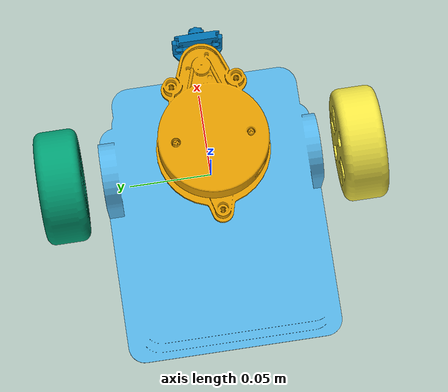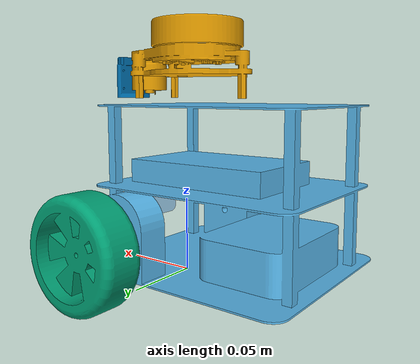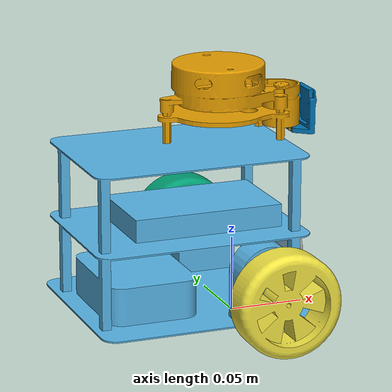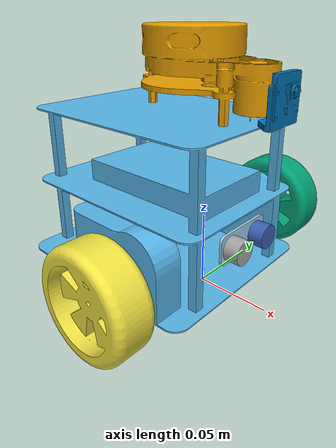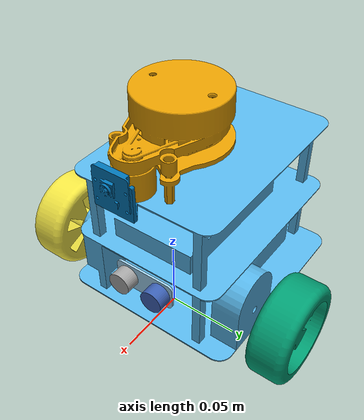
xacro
<?xml version="1.0"?>
<robot xmlns:xacro="http://ros.org/wiki/xacro" name="aidl200">
    <xacro:include filename="$(find minibot_description)/urdf/common/inertia_macro.urdf.xacro"/>
    <xacro:include filename="$(find minibot_description)/urdf/minibot.urdf.xacro"/>
    <xacro:include filename="$(find minibot_description)/urdf/minibot_gazebo.urdf.xacro"/>
    <xacro:include filename="$(find minibot_description)/urdf/minibot_ros2_control.urdf.xacro"/>

    <xacro:arg name="prefix" default=""/>
    <xacro:arg name="is_sim" default="false"/>
    <xacro:arg name="robot_port_name" default="/dev/ttyArduino"/>
    <xacro:arg name="robot_baudrate" default="500000"/>

    <xacro:property name="prefix" value="$(arg prefix)"/>

    <!-- insert robot base -->
    <xacro:insert_robot prefix="$(arg prefix)"/>
    <xacro:insert_ros2_control prefix="$(arg prefix)" is_sim="$(arg is_sim)" robot_port_name="$(arg robot_port_name)" robot_baudrate="$(arg robot_baudrate)"/>
    <xacro:if value="$(arg is_sim)">
        <xacro:insert_gazebo prefix="$(arg prefix)"/>
    </xacro:if>

    <!-- insert ydlidar_x2 lidar -->
    <link name="${prefix}ydlidar_lidar_mount">
        <visual>
            <origin xyz="0 0 0" rpy="0 0 0"/>
            <geometry>
                <mesh filename="package://minibot_description/meshes/visual/ydlidar_x2_assy.dae" scale="1 1 1"/>
            </geometry>
        </visual>
        <collision>
            <origin xyz="0 0 0" rpy="0 0 0"/>
            <geometry>
                <mesh filename="package://minibot_description/meshes/collision/ydlidar_x2_assy.stl" scale="1 1 1"/>
            </geometry>
        </collision>
        <inertial>
            <origin xyz="0.007 0 0.025" rpy="0 0 0"/>
            <mass value="0.150"/>
            <inertia ixx="0.000058" ixy="0" ixz="0.000005" iyy="0.000099" iyz="0" izz="0.000103"/>
        </inertial>
    </link>

    <joint name="${prefix}idar_mount_fixed_joint" type="fixed">
        <parent link="${prefix}base_link"/>
        <child link="${prefix}ydlidar_lidar_mount"/>
        <origin xyz="-0.01 0 0.085" rpy="0 0 0"/>
    </joint>

    <link name="${prefix}laser_link"/>

    <joint name="${prefix}laser_link_fixed_joint" type="fixed">
        <parent link="${prefix}ydlidar_lidar_mount"/>
        <child link="${prefix}laser_link"/>
        <origin xyz="0 0 0.04245" rpy="0 0 0"/>
    </joint>
</robot>

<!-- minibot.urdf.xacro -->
<robot xmlns:xacro="http://www.ros.org/wiki/xacro">
    <xacro:macro name="insert_robot" params="prefix">

        <xacro:property name="wheel_diameter" value="0.068"/>
        <xacro:property name="wheel_speration" value="0.180"/>

        <link name="${prefix}base_footprint"/>

        <link name="${prefix}base_link">
            <visual>
                <origin xyz="0 0 0" rpy="0 0 0"/>
                <geometry>
                    <mesh filename="package://minibot_description/meshes/visual/base_link.dae" scale="1 1 1"/>
                </geometry>
            </visual>
            <collision>
                <origin xyz="0 0 0" rpy="0 0 0"/>
                <geometry>
                    <mesh filename="package://minibot_description/meshes/collision/base_link.stl" scale="1 1 1"/>
                </geometry>
            </collision>
            <inertial>
                <origin xyz="-0.02 0 0.028" rpy="0 0 0"/>
                <mass value="2.0"/>
                <inertia ixx="0.01" ixy="0" ixz="0" iyy="0.01" iyz="0" izz="0.01"/>
            </inertial>
        </link>

        <joint name="${prefix}base_link_fixed_joint" type="fixed">
            <parent link="${prefix}base_footprint"/>
            <child link="${prefix}base_link"/>
            <origin xyz="0 0 ${wheel_diameter/2}" rpy="0 0 0"/>
        </joint>

        <xacro:macro name="insert_wheel" params="parent prefix prefix_dir dir">
            <link name="${prefix}${prefix_dir}_wheel">
                <visual>
                    <origin xyz="0 0 0" rpy="0 0 ${dir * pi/2}"/>
                    <geometry>
                        <mesh filename="package://minibot_description/meshes/visual/wheel.dae" scale="1 1 1"/>
                    </geometry>
                </visual>
                <collision>
                    <origin xyz="0 0 0" rpy="0 0 ${dir * pi/2}"/>
                    <geometry>
                        <mesh filename="package://minibot_description/meshes/collision/wheel.stl" scale="1 1 1"/>
                    </geometry>
                </collision>
                <inertial>
                    <origin xyz="0 0 0" rpy="0 0 0"/>
                    <mass value="0.200"/>
                    <!-- For stable on GAZEBO. Force Inertial value to LARGE value -->
                    <inertia ixx="0.1" ixy="0" ixz="0" iyy="0.1" iyz="0" izz="0.1"/>
                </inertial>
            </link>

            <joint name="${prefix}${prefix_dir}_wheel_joint" type="continuous">
                <parent link="${parent}"/>
                <child link="${prefix}${prefix_dir}_wheel"/>
                <axis xyz="0 1 0"/>
                <origin xyz="0 ${dir * wheel_speration/2} 0" rpy="0 0 0"/>
            </joint>
        </xacro:macro>

        <xacro:insert_wheel parent="${prefix}base_link" prefix="${prefix}" prefix_dir="l" dir="1" />
        <xacro:insert_wheel parent="${prefix}base_link" prefix="${prefix}" prefix_dir="r" dir="-1" />

        <link name="${prefix}front_camera_mount">
            <visual>
                <origin xyz="0 0 0" rpy="0 0 0"/>
                <geometry>
                    <mesh filename="package://minibot_description/meshes/visual/front_camera.dae" scale="1 1 1"/>
                </geometry>
            </visual>
            <collision>
                <origin xyz="0 0 0" rpy="0 0 0"/>
                <geometry>
                    <mesh filename="package://minibot_description/meshes/collision/front_camera.stl" scale="1 1 1"/>
                </geometry>
            </collision>
            <inertial>
                <origin xyz="0.005 0 0.013" rpy="0 0 0"/>
                <mass value="0.050000"/>
                <inertia ixx="0.000005" ixy="0" ixz="-0.000001" iyy="0.000004" iyz="0" izz="0.000003"/>
            </inertial>
        </link>

        <joint name="${prefix}front_camera_mount_fixed_joint" type="fixed">
            <parent link="${prefix}base_link"/>
            <child link="${prefix}front_camera_mount"/>
            <origin xyz="0.045 0 0.085" rpy="0 0 0"/>
        </joint>

        <link name="${prefix}camera_link"/>

        <joint name="${prefix}camera_link_fixed_joint" type="fixed">
            <parent link="${prefix}front_camera_mount"/>
            <child link="${prefix}camera_link"/>
            <origin xyz="0.0111 0 0.0193" rpy="0 ${pi/2} 0"/>
        </joint>

        <link name="${prefix}ul_sensor_mount">
            <visual>
                <origin xyz="0 0 0" rpy="0 0 0"/>
                <geometry>
                    <mesh filename="package://minibot_description/meshes/visual/ul_sensor.dae" scale="1 1 1"/>
                </geometry>
            </visual>
            <collision>
                <origin xyz="0 0 0" rpy="0 0 0"/>
                <geometry>
                    <mesh filename="package://minibot_description/meshes/collision/ul_sensor.stl" scale="1 1 1"/>
                </geometry>
            </collision>
            <inertial>
                <origin xyz="0.005 0 0.013" rpy="0 0 0"/>
                <mass value="0.050000"/>
                <inertia ixx="0.000005" ixy="0" ixz="-0.000001" iyy="0.000004" iyz="0" izz="0.000003"/>
            </inertial>
        </link>

        <joint name="${prefix}ul_sensor_mount_fixed_joint" type="fixed">
            <parent link="${prefix}base_link"/>
            <child link="${prefix}ul_sensor_mount"/>
            <origin xyz="0.03 0 0.01" rpy="0 0 0"/>
        </joint>

        <link name="${prefix}ul_sensor_link"/>

        <joint name="${prefix}ul_sensor_link_fixed_joint" type="fixed">
            <parent link="${prefix}ul_sensor_mount"/>
            <child link="${prefix}ul_sensor_link"/>
            <origin xyz="0.02 0 0" rpy="0 0 0"/>
        </joint>

    </xacro:macro>
</robot>
